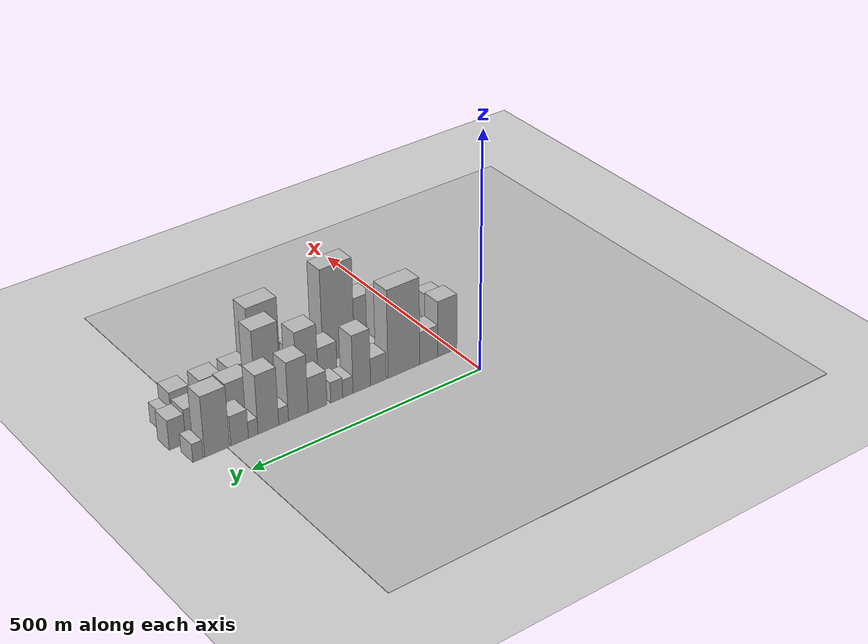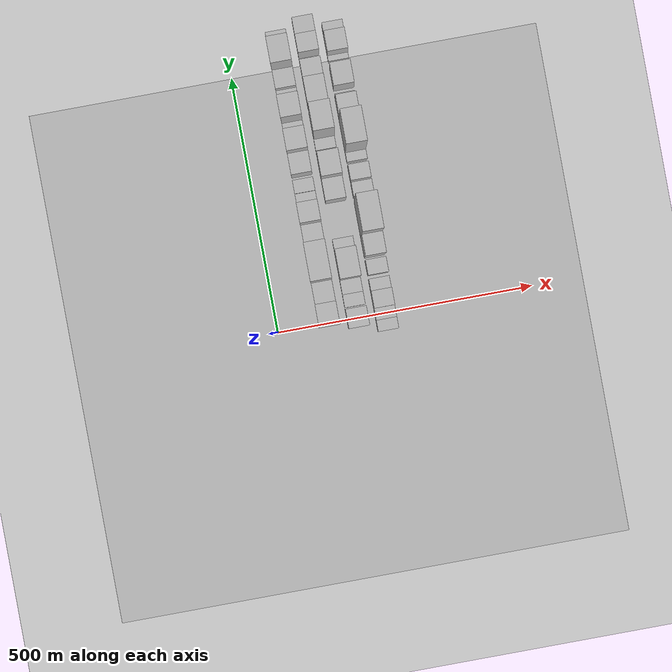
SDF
<sdf version="1.6">
 <world name="default">
  <include><name>ground_plane_1</name><uri>model://HANNAS_ground_plane</uri></include>
  <include>
   <name>ground_plane_2</name>
   <uri>model://HANNAS_ground_plane</uri>
   <pose>100 0 0  0 0 0</pose>
  </include>
  <model name="building_15">
   <static>1</static>
   <pose>100.0000 16.6368 0 0.000000 0.000000 0.000000</pose>
   <link name="link">
    <pose>0 0 61.50 0 0 0</pose>
    <collision name="collision"><geometry><box><size>40.0000 44.8695 123.0000</size></box></geometry></collision>
    <visual name="visual">
     <cast_shadows>0</cast_shadows>
     <geometry><box><size>40.0000 44.8695 123.0000</size></box></geometry>
     <material>
      <script>
       <uri>model://HANNAS_wall/materials/scripts</uri>
       <uri>model://HANNAS_wall/materials/textures</uri>
       <name>vrc/HANNAS_wall</name>
      </script>
     </material>
    </visual>
   </link>
  </model>
  <model name="building_16">
   <static>1</static>
   <pose>100.0000 59.8555 0 0.000000 0.000000 0.000000</pose>
   <link name="link">
    <pose>0 0 36.00 0 0 0</pose>
    <collision name="collision"><geometry><box><size>40.0000 41.5679 72.0000</size></box></geometry></collision>
    <visual name="visual">
     <cast_shadows>0</cast_shadows>
     <geometry><box><size>40.0000 41.5679 72.0000</size></box></geometry>
     <material>
      <script>
       <uri>model://HANNAS_wall/materials/scripts</uri>
       <uri>model://HANNAS_wall/materials/textures</uri>
       <name>vrc/HANNAS_wall</name>
      </script>
     </material>
    </visual>
   </link>
  </model>
  <model name="building_17">
   <static>1</static>
   <pose>100.0000 117.0593 0 0.000000 0.000000 0.000000</pose>
   <link name="link">
    <pose>0 0 96.00 0 0 0</pose>
    <collision name="collision"><geometry><box><size>40.0000 72.8397 192.0000</size></box></geometry></collision>
    <visual name="visual">
     <cast_shadows>0</cast_shadows>
     <geometry><box><size>40.0000 72.8397 192.0000</size></box></geometry>
     <material>
      <script>
       <uri>model://HANNAS_wall/materials/scripts</uri>
       <uri>model://HANNAS_wall/materials/textures</uri>
       <name>vrc/HANNAS_wall</name>
      </script>
     </material>
    </visual>
   </link>
  </model>
  <model name="building_18">
   <static>1</static>
   <pose>100.0000 175.2094 0 0.000000 0.000000 0.000000</pose>
   <link name="link">
    <pose>0 0 30.00 0 0 0</pose>
    <collision name="collision"><geometry><box><size>40.0000 35.4605 60.0000</size></box></geometry></collision>
    <visual name="visual">
     <cast_shadows>0</cast_shadows>
     <geometry><box><size>40.0000 35.4605 60.0000</size></box></geometry>
     <material>
      <script>
       <uri>model://HANNAS_wall/materials/scripts</uri>
       <uri>model://HANNAS_wall/materials/textures</uri>
       <name>vrc/HANNAS_wall</name>
      </script>
     </material>
    </visual>
   </link>
  </model>
  <model name="building_19">
   <static>1</static>
   <pose>100.0000 212.4825 0 0.000000 0.000000 0.000000</pose>
   <link name="link">
    <pose>0 0 63.00 0 0 0</pose>
    <collision name="collision"><geometry><box><size>40.0000 39.0856 126.0000</size></box></geometry></collision>
    <visual name="visual">
     <cast_shadows>0</cast_shadows>
     <geometry><box><size>40.0000 39.0856 126.0000</size></box></geometry>
     <material>
      <script>
       <uri>model://HANNAS_wall/materials/scripts</uri>
       <uri>model://HANNAS_wall/materials/textures</uri>
       <name>vrc/HANNAS_wall</name>
      </script>
     </material>
    </visual>
   </link>
  </model>
  <model name="building_20">
   <static>1</static>
   <pose>100.0000 243.4756 0 0.000000 0.000000 0.000000</pose>
   <link name="link">
    <pose>0 0 19.50 0 0 0</pose>
    <collision name="collision"><geometry><box><size>40.0000 22.9006 39.0000</size></box></geometry></collision>
    <visual name="visual">
     <cast_shadows>0</cast_shadows>
     <geometry><box><size>40.0000 22.9006 39.0000</size></box></geometry>
     <material>
      <script>
       <uri>model://HANNAS_wall/materials/scripts</uri>
       <uri>model://HANNAS_wall/materials/textures</uri>
       <name>vrc/HANNAS_wall</name>
      </script>
     </material>
    </visual>
   </link>
  </model>
  <model name="building_21">
   <static>1</static>
   <pose>100.0000 268.1488 0 0.000000 0.000000 0.000000</pose>
   <link name="link">
    <pose>0 0 22.50 0 0 0</pose>
    <collision name="collision"><geometry><box><size>40.0000 26.4457 45.0000</size></box></geometry></collision>
    <visual name="visual">
     <cast_shadows>0</cast_shadows>
     <geometry><box><size>40.0000 26.4457 45.0000</size></box></geometry>
     <material>
      <script>
       <uri>model://HANNAS_wall/materials/scripts</uri>
       <uri>model://HANNAS_wall/materials/textures</uri>
       <name>vrc/HANNAS_wall</name>
      </script>
     </material>
    </visual>
   </link>
  </model>
  <model name="building_22">
   <static>1</static>
   <pose>100.0000 309.7758 0 0.000000 0.000000 0.000000</pose>
   <link name="link">
    <pose>0 0 37.50 0 0 0</pose>
    <collision name="collision"><geometry><box><size>40.0000 40.8084 75.0000</size></box></geometry></collision>
    <visual name="visual">
     <cast_shadows>0</cast_shadows>
     <geometry><box><size>40.0000 40.8084 75.0000</size></box></geometry>
     <material>
      <script>
       <uri>model://HANNAS_wall/materials/scripts</uri>
       <uri>model://HANNAS_wall/materials/textures</uri>
       <name>vrc/HANNAS_wall</name>
      </script>
     </material>
    </visual>
   </link>
  </model>
  <model name="building_23">
   <static>1</static>
   <pose>100.0000 351.2639 0 0.000000 0.000000 0.000000</pose>
   <link name="link">
    <pose>0 0 63.00 0 0 0</pose>
    <collision name="collision"><geometry><box><size>40.0000 42.1678 126.0000</size></box></geometry></collision>
    <visual name="visual">
     <cast_shadows>0</cast_shadows>
     <geometry><box><size>40.0000 42.1678 126.0000</size></box></geometry>
     <material>
      <script>
       <uri>model://HANNAS_wall/materials/scripts</uri>
       <uri>model://HANNAS_wall/materials/textures</uri>
       <name>vrc/HANNAS_wall</name>
      </script>
     </material>
    </visual>
   </link>
  </model>
  <model name="building_24">
   <static>1</static>
   <pose>100.0000 382.6859 0 0.000000 0.000000 0.000000</pose>
   <link name="link">
    <pose>0 0 18.00 0 0 0</pose>
    <collision name="collision"><geometry><box><size>40.0000 20.6761 36.0000</size></box></geometry></collision>
    <visual name="visual">
     <cast_shadows>0</cast_shadows>
     <geometry><box><size>40.0000 20.6761 36.0000</size></box></geometry>
     <material>
      <script>
       <uri>model://HANNAS_wall/materials/scripts</uri>
       <uri>model://HANNAS_wall/materials/textures</uri>
       <name>vrc/HANNAS_wall</name>
      </script>
     </material>
    </visual>
   </link>
  </model>
  <model name="building_25">
   <static>1</static>
   <pose>100.0000 414.9001 0 0.000000 0.000000 0.000000</pose>
   <link name="link">
    <pose>0 0 63.00 0 0 0</pose>
    <collision name="collision"><geometry><box><size>40.0000 43.7524 126.0000</size></box></geometry></collision>
    <visual name="visual">
     <cast_shadows>0</cast_shadows>
     <geometry><box><size>40.0000 43.7524 126.0000</size></box></geometry>
     <material>
      <script>
       <uri>model://HANNAS_wall/materials/scripts</uri>
       <uri>model://HANNAS_wall/materials/textures</uri>
       <name>vrc/HANNAS_wall</name>
      </script>
     </material>
    </visual>
   </link>
  </model>
  <model name="building_26">
   <static>1</static>
   <pose>100.0000 446.7177 0 0.000000 0.000000 0.000000</pose>
   <link name="link">
    <pose>0 0 18.00 0 0 0</pose>
    <collision name="collision"><geometry><box><size>40.0000 19.8828 36.0000</size></box></geometry></collision>
    <visual name="visual">
     <cast_shadows>0</cast_shadows>
     <geometry><box><size>40.0000 19.8828 36.0000</size></box></geometry>
     <material>
      <script>
       <uri>model://HANNAS_wall/materials/scripts</uri>
       <uri>model://HANNAS_wall/materials/textures</uri>
       <name>vrc/HANNAS_wall</name>
      </script>
     </material>
    </visual>
   </link>
  </model>
  <model name="building_27">
   <static>1</static>
   <pose>100.0000 474.7866 0 0.000000 0.000000 0.000000</pose>
   <link name="link">
    <pose>0 0 31.50 0 0 0</pose>
    <collision name="collision"><geometry><box><size>40.0000 36.2548 63.0000</size></box></geometry></collision>
    <visual name="visual">
     <cast_shadows>0</cast_shadows>
     <geometry><box><size>40.0000 36.2548 63.0000</size></box></geometry>
     <material>
      <script>
       <uri>model://HANNAS_wall/materials/scripts</uri>
       <uri>model://HANNAS_wall/materials/textures</uri>
       <name>vrc/HANNAS_wall</name>
      </script>
     </material>
    </visual>
   </link>
  </model>
  <model name="building_28">
   <static>1</static>
   <pose>100.0000 521.2659 0 0.000000 0.000000 0.000000</pose>
   <link name="link">
    <pose>0 0 64.50 0 0 0</pose>
    <collision name="collision"><geometry><box><size>40.0000 50.7038 129.0000</size></box></geometry></collision>
    <visual name="visual">
     <cast_shadows>0</cast_shadows>
     <geometry><box><size>40.0000 50.7038 129.0000</size></box></geometry>
     <material>
      <script>
       <uri>model://HANNAS_wall/materials/scripts</uri>
       <uri>model://HANNAS_wall/materials/textures</uri>
       <name>vrc/HANNAS_wall</name>
      </script>
     </material>
    </visual>
   </link>
  </model>
  <model name="building_29">
   <static>1</static>
   <pose>100.0000 559.9831 0 0.000000 0.000000 0.000000</pose>
   <link name="link">
    <pose>0 0 19.50 0 0 0</pose>
    <collision name="collision"><geometry><box><size>40.0000 20.7306 39.0000</size></box></geometry></collision>
    <visual name="visual">
     <cast_shadows>0</cast_shadows>
     <geometry><box><size>40.0000 20.7306 39.0000</size></box></geometry>
     <material>
      <script>
       <uri>model://HANNAS_wall/materials/scripts</uri>
       <uri>model://HANNAS_wall/materials/textures</uri>
       <name>vrc/HANNAS_wall</name>
      </script>
     </material>
    </visual>
   </link>
  </model>
  <model name="building_48">
   <static>1</static>
   <pose>155.0000 1.4271 0 0.000000 0.000000 0.000000</pose>
   <link name="link">
    <pose>0 0 49.50 0 0 0</pose>
    <collision name="collision"><geometry><box><size>40.0000 37.5009 99.0000</size></box></geometry></collision>
    <visual name="visual">
     <cast_shadows>0</cast_shadows>
     <geometry><box><size>40.0000 37.5009 99.0000</size></box></geometry>
     <material>
      <script>
       <uri>model://HANNAS_wall/materials/scripts</uri>
       <uri>model://HANNAS_wall/materials/textures</uri>
       <name>vrc/HANNAS_wall</name>
      </script>
     </material>
    </visual>
   </link>
  </model>
  <model name="building_49">
   <static>1</static>
   <pose>155.0000 35.8026 0 0.000000 0.000000 0.000000</pose>
   <link name="link">
    <pose>0 0 24.00 0 0 0</pose>
    <collision name="collision"><geometry><box><size>40.0000 25.2502 48.0000</size></box></geometry></collision>
    <visual name="visual">
     <cast_shadows>0</cast_shadows>
     <geometry><box><size>40.0000 25.2502 48.0000</size></box></geometry>
     <material>
      <script>
       <uri>model://HANNAS_wall/materials/scripts</uri>
       <uri>model://HANNAS_wall/materials/textures</uri>
       <name>vrc/HANNAS_wall</name>
      </script>
     </material>
    </visual>
   </link>
  </model>
  <model name="building_50">
   <static>1</static>
   <pose>155.0000 62.4399 0 0.000000 0.000000 0.000000</pose>
   <link name="link">
    <pose>0 0 24.00 0 0 0</pose>
    <collision name="collision"><geometry><box><size>40.0000 28.0244 48.0000</size></box></geometry></collision>
    <visual name="visual">
     <cast_shadows>0</cast_shadows>
     <geometry><box><size>40.0000 28.0244 48.0000</size></box></geometry>
     <material>
      <script>
       <uri>model://HANNAS_wall/materials/scripts</uri>
       <uri>model://HANNAS_wall/materials/textures</uri>
       <name>vrc/HANNAS_wall</name>
      </script>
     </material>
    </visual>
   </link>
  </model>
  <model name="building_51">
   <static>1</static>
   <pose>155.0000 104.8814 0 0.000000 0.000000 0.000000</pose>
   <link name="link">
    <pose>0 0 72.00 0 0 0</pose>
    <collision name="collision"><geometry><box><size>40.0000 56.8585 144.0000</size></box></geometry></collision>
    <visual name="visual">
     <cast_shadows>0</cast_shadows>
     <geometry><box><size>40.0000 56.8585 144.0000</size></box></geometry>
     <material>
      <script>
       <uri>model://HANNAS_wall/materials/scripts</uri>
       <uri>model://HANNAS_wall/materials/textures</uri>
       <name>vrc/HANNAS_wall</name>
      </script>
     </material>
    </visual>
   </link>
  </model>
  <model name="building_52">
   <static>1</static>
   <pose>155.0000 144.8440 0 0.000000 0.000000 0.000000</pose>
   <link name="link">
    <pose>0 0 22.50 0 0 0</pose>
    <collision name="collision"><geometry><box><size>40.0000 23.0669 45.0000</size></box></geometry></collision>
    <visual name="visual">
     <cast_shadows>0</cast_shadows>
     <geometry><box><size>40.0000 23.0669 45.0000</size></box></geometry>
     <material>
      <script>
       <uri>model://HANNAS_wall/materials/scripts</uri>
       <uri>model://HANNAS_wall/materials/textures</uri>
       <name>vrc/HANNAS_wall</name>
      </script>
     </material>
    </visual>
   </link>
  </model>
  <model name="building_53">
   <static>1</static>
   <pose>155.0000 249.5226 0 0.000000 0.000000 0.000000</pose>
   <link name="link">
    <pose>0 0 42.00 0 0 0</pose>
    <collision name="collision"><geometry><box><size>40.0000 42.0968 84.0000</size></box></geometry></collision>
    <visual name="visual">
     <cast_shadows>0</cast_shadows>
     <geometry><box><size>40.0000 42.0968 84.0000</size></box></geometry>
     <material>
      <script>
       <uri>model://HANNAS_wall/materials/scripts</uri>
       <uri>model://HANNAS_wall/materials/textures</uri>
       <name>vrc/HANNAS_wall</name>
      </script>
     </material>
    </visual>
   </link>
  </model>
  <model name="building_54">
   <static>1</static>
   <pose>155.0000 294.1659 0 0.000000 0.000000 0.000000</pose>
   <link name="link">
    <pose>0 0 69.00 0 0 0</pose>
    <collision name="collision"><geometry><box><size>40.0000 47.1897 138.0000</size></box></geometry></collision>
    <visual name="visual">
     <cast_shadows>0</cast_shadows>
     <geometry><box><size>40.0000 47.1897 138.0000</size></box></geometry>
     <material>
      <script>
       <uri>model://HANNAS_wall/materials/scripts</uri>
       <uri>model://HANNAS_wall/materials/textures</uri>
       <name>vrc/HANNAS_wall</name>
      </script>
     </material>
    </visual>
   </link>
  </model>
  <model name="building_55">
   <static>1</static>
   <pose>155.0000 325.5950 0 0.000000 0.000000 0.000000</pose>
   <link name="link">
    <pose>0 0 9.00 0 0 0</pose>
    <collision name="collision"><geometry><box><size>40.0000 7.6686 18.0000</size></box></geometry></collision>
    <visual name="visual">
     <cast_shadows>0</cast_shadows>
     <geometry><box><size>40.0000 7.6686 18.0000</size></box></geometry>
     <material>
      <script>
       <uri>model://HANNAS_wall/materials/scripts</uri>
       <uri>model://HANNAS_wall/materials/textures</uri>
       <name>vrc/HANNAS_wall</name>
      </script>
     </material>
    </visual>
   </link>
  </model>
  <model name="building_56">
   <static>1</static>
   <pose>155.0000 340.5344 0 0.000000 0.000000 0.000000</pose>
   <link name="link">
    <pose>0 0 19.50 0 0 0</pose>
    <collision name="collision"><geometry><box><size>40.0000 22.2103 39.0000</size></box></geometry></collision>
    <visual name="visual">
     <cast_shadows>0</cast_shadows>
     <geometry><box><size>40.0000 22.2103 39.0000</size></box></geometry>
     <material>
      <script>
       <uri>model://HANNAS_wall/materials/scripts</uri>
       <uri>model://HANNAS_wall/materials/textures</uri>
       <name>vrc/HANNAS_wall</name>
      </script>
     </material>
    </visual>
   </link>
  </model>
  <model name="building_57">
   <static>1</static>
   <pose>155.0000 378.6704 0 0.000000 0.000000 0.000000</pose>
   <link name="link">
    <pose>0 0 88.50 0 0 0</pose>
    <collision name="collision"><geometry><box><size>40.0000 54.0616 177.0000</size></box></geometry></collision>
    <visual name="visual">
     <cast_shadows>0</cast_shadows>
     <geometry><box><size>40.0000 54.0616 177.0000</size></box></geometry>
     <material>
      <script>
       <uri>model://HANNAS_wall/materials/scripts</uri>
       <uri>model://HANNAS_wall/materials/textures</uri>
       <name>vrc/HANNAS_wall</name>
      </script>
     </material>
    </visual>
   </link>
  </model>
  <model name="building_58">
   <static>1</static>
   <pose>155.0000 439.4594 0 0.000000 0.000000 0.000000</pose>
   <link name="link">
    <pose>0 0 45.00 0 0 0</pose>
    <collision name="collision"><geometry><box><size>40.0000 53.5163 90.0000</size></box></geometry></collision>
    <visual name="visual">
     <cast_shadows>0</cast_shadows>
     <geometry><box><size>40.0000 53.5163 90.0000</size></box></geometry>
     <material>
      <script>
       <uri>model://HANNAS_wall/materials/scripts</uri>
       <uri>model://HANNAS_wall/materials/textures</uri>
       <name>vrc/HANNAS_wall</name>
      </script>
     </material>
    </visual>
   </link>
  </model>
  <model name="building_59">
   <static>1</static>
   <pose>155.0000 484.5531 0 0.000000 0.000000 0.000000</pose>
   <link name="link">
    <pose>0 0 34.50 0 0 0</pose>
    <collision name="collision"><geometry><box><size>40.0000 36.6712 69.0000</size></box></geometry></collision>
    <visual name="visual">
     <cast_shadows>0</cast_shadows>
     <geometry><box><size>40.0000 36.6712 69.0000</size></box></geometry>
     <material>
      <script>
       <uri>model://HANNAS_wall/materials/scripts</uri>
       <uri>model://HANNAS_wall/materials/textures</uri>
       <name>vrc/HANNAS_wall</name>
      </script>
     </material>
    </visual>
   </link>
  </model>
  <model name="building_60">
   <static>1</static>
   <pose>155.0000 507.0580 0 0.000000 0.000000 0.000000</pose>
   <link name="link">
    <pose>0 0 9.00 0 0 0</pose>
    <collision name="collision"><geometry><box><size>40.0000 8.3384 18.0000</size></box></geometry></collision>
    <visual name="visual">
     <cast_shadows>0</cast_shadows>
     <geometry><box><size>40.0000 8.3384 18.0000</size></box></geometry>
     <material>
      <script>
       <uri>model://HANNAS_wall/materials/scripts</uri>
       <uri>model://HANNAS_wall/materials/textures</uri>
       <name>vrc/HANNAS_wall</name>
      </script>
     </material>
    </visual>
   </link>
  </model>
  <model name="building_61">
   <static>1</static>
   <pose>155.0000 533.3430 0 0.000000 0.000000 0.000000</pose>
   <link name="link">
    <pose>0 0 36.00 0 0 0</pose>
    <collision name="collision"><geometry><box><size>40.0000 36.2317 72.0000</size></box></geometry></collision>
    <visual name="visual">
     <cast_shadows>0</cast_shadows>
     <geometry><box><size>40.0000 36.2317 72.0000</size></box></geometry>
     <material>
      <script>
       <uri>model://HANNAS_wall/materials/scripts</uri>
       <uri>model://HANNAS_wall/materials/textures</uri>
       <name>vrc/HANNAS_wall</name>
      </script>
     </material>
    </visual>
   </link>
  </model>
  <model name="building_62">
   <static>1</static>
   <pose>155.0000 568.1721 0 0.000000 0.000000 0.000000</pose>
   <link name="link">
    <pose>0 0 31.50 0 0 0</pose>
    <collision name="collision"><geometry><box><size>40.0000 33.4264 63.0000</size></box></geometry></collision>
    <visual name="visual">
     <cast_shadows>0</cast_shadows>
     <geometry><box><size>40.0000 33.4264 63.0000</size></box></geometry>
     <material>
      <script>
       <uri>model://HANNAS_wall/materials/scripts</uri>
       <uri>model://HANNAS_wall/materials/textures</uri>
       <name>vrc/HANNAS_wall</name>
      </script>
     </material>
    </visual>
   </link>
  </model>
  <model name="building_79">
   <static>1</static>
   <pose>210.0000 -22.2609 0 0.000000 0.000000 0.000000</pose>
   <link name="link">
    <pose>0 0 21.00 0 0 0</pose>
    <collision name="collision"><geometry><box><size>40.0000 22.2791 42.0000</size></box></geometry></collision>
    <visual name="visual">
     <cast_shadows>0</cast_shadows>
     <geometry><box><size>40.0000 22.2791 42.0000</size></box></geometry>
     <material>
      <script>
       <uri>model://HANNAS_wall/materials/scripts</uri>
       <uri>model://HANNAS_wall/materials/textures</uri>
       <name>vrc/HANNAS_wall</name>
      </script>
     </material>
    </visual>
   </link>
  </model>
  <model name="building_80">
   <static>1</static>
   <pose>210.0000 0.4637 0 0.000000 0.000000 0.000000</pose>
   <link name="link">
    <pose>0 0 22.50 0 0 0</pose>
    <collision name="collision"><geometry><box><size>40.0000 23.1699 45.0000</size></box></geometry></collision>
    <visual name="visual">
     <cast_shadows>0</cast_shadows>
     <geometry><box><size>40.0000 23.1699 45.0000</size></box></geometry>
     <material>
      <script>
       <uri>model://HANNAS_wall/materials/scripts</uri>
       <uri>model://HANNAS_wall/materials/textures</uri>
       <name>vrc/HANNAS_wall</name>
      </script>
     </material>
    </visual>
   </link>
  </model>
  <model name="building_81">
   <static>1</static>
   <pose>210.0000 28.9413 0 0.000000 0.000000 0.000000</pose>
   <link name="link">
    <pose>0 0 30.00 0 0 0</pose>
    <collision name="collision"><geometry><box><size>40.0000 33.7853 60.0000</size></box></geometry></collision>
    <visual name="visual">
     <cast_shadows>0</cast_shadows>
     <geometry><box><size>40.0000 33.7853 60.0000</size></box></geometry>
     <material>
      <script>
       <uri>model://HANNAS_wall/materials/scripts</uri>
       <uri>model://HANNAS_wall/materials/textures</uri>
       <name>vrc/HANNAS_wall</name>
      </script>
     </material>
    </visual>
   </link>
  </model>
  <model name="building_82">
   <static>1</static>
   <pose>210.0000 57.4894 0 0.000000 0.000000 0.000000</pose>
   <link name="link">
    <pose>0 0 21.00 0 0 0</pose>
    <collision name="collision"><geometry><box><size>40.0000 23.3110 42.0000</size></box></geometry></collision>
    <visual name="visual">
     <cast_shadows>0</cast_shadows>
     <geometry><box><size>40.0000 23.3110 42.0000</size></box></geometry>
     <material>
      <script>
       <uri>model://HANNAS_wall/materials/scripts</uri>
       <uri>model://HANNAS_wall/materials/textures</uri>
       <name>vrc/HANNAS_wall</name>
      </script>
     </material>
    </visual>
   </link>
  </model>
  <model name="building_83">
   <static>1</static>
   <pose>210.0000 91.0769 0 0.000000 0.000000 0.000000</pose>
   <link name="link">
    <pose>0 0 28.50 0 0 0</pose>
    <collision name="collision"><geometry><box><size>40.0000 29.8640 57.0000</size></box></geometry></collision>
    <visual name="visual">
     <cast_shadows>0</cast_shadows>
     <geometry><box><size>40.0000 29.8640 57.0000</size></box></geometry>
     <material>
      <script>
       <uri>model://HANNAS_wall/materials/scripts</uri>
       <uri>model://HANNAS_wall/materials/textures</uri>
       <name>vrc/HANNAS_wall</name>
      </script>
     </material>
    </visual>
   </link>
  </model>
  <model name="building_84">
   <static>1</static>
   <pose>210.0000 131.5543 0 0.000000 0.000000 0.000000</pose>
   <link name="link">
    <pose>0 0 58.50 0 0 0</pose>
    <collision name="collision"><geometry><box><size>40.0000 41.0907 117.0000</size></box></geometry></collision>
    <visual name="visual">
     <cast_shadows>0</cast_shadows>
     <geometry><box><size>40.0000 41.0907 117.0000</size></box></geometry>
     <material>
      <script>
       <uri>model://HANNAS_wall/materials/scripts</uri>
       <uri>model://HANNAS_wall/materials/textures</uri>
       <name>vrc/HANNAS_wall</name>
      </script>
     </material>
    </visual>
   </link>
  </model>
  <model name="building_85">
   <static>1</static>
   <pose>210.0000 187.5679 0 0.000000 0.000000 0.000000</pose>
   <link name="link">
    <pose>0 0 103.50 0 0 0</pose>
    <collision name="collision"><geometry><box><size>40.0000 70.9364 207.0000</size></box></geometry></collision>
    <visual name="visual">
     <cast_shadows>0</cast_shadows>
     <geometry><box><size>40.0000 70.9364 207.0000</size></box></geometry>
     <material>
      <script>
       <uri>model://HANNAS_wall/materials/scripts</uri>
       <uri>model://HANNAS_wall/materials/textures</uri>
       <name>vrc/HANNAS_wall</name>
      </script>
     </material>
    </visual>
   </link>
  </model>
  <model name="building_86">
   <static>1</static>
   <pose>210.0000 242.9680 0 0.000000 0.000000 0.000000</pose>
   <link name="link">
    <pose>0 0 27.00 0 0 0</pose>
    <collision name="collision"><geometry><box><size>40.0000 27.8639 54.0000</size></box></geometry></collision>
    <visual name="visual">
     <cast_shadows>0</cast_shadows>
     <geometry><box><size>40.0000 27.8639 54.0000</size></box></geometry>
     <material>
      <script>
       <uri>model://HANNAS_wall/materials/scripts</uri>
       <uri>model://HANNAS_wall/materials/textures</uri>
       <name>vrc/HANNAS_wall</name>
      </script>
     </material>
    </visual>
   </link>
  </model>
  <model name="building_87">
   <static>1</static>
   <pose>210.0000 275.3803 0 0.000000 0.000000 0.000000</pose>
   <link name="link">
    <pose>0 0 28.50 0 0 0</pose>
    <collision name="collision"><geometry><box><size>40.0000 30.9608 57.0000</size></box></geometry></collision>
    <visual name="visual">
     <cast_shadows>0</cast_shadows>
     <geometry><box><size>40.0000 30.9608 57.0000</size></box></geometry>
     <material>
      <script>
       <uri>model://HANNAS_wall/materials/scripts</uri>
       <uri>model://HANNAS_wall/materials/textures</uri>
       <name>vrc/HANNAS_wall</name>
      </script>
     </material>
    </visual>
   </link>
  </model>
  <model name="building_88">
   <static>1</static>
   <pose>210.0000 307.0343 0 0.000000 0.000000 0.000000</pose>
   <link name="link">
    <pose>0 0 16.50 0 0 0</pose>
    <collision name="collision"><geometry><box><size>40.0000 18.3470 33.0000</size></box></geometry></collision>
    <visual name="visual">
     <cast_shadows>0</cast_shadows>
     <geometry><box><size>40.0000 18.3470 33.0000</size></box></geometry>
     <material>
      <script>
       <uri>model://HANNAS_wall/materials/scripts</uri>
       <uri>model://HANNAS_wall/materials/textures</uri>
       <name>vrc/HANNAS_wall</name>
      </script>
     </material>
    </visual>
   </link>
  </model>
  <model name="building_89">
   <static>1</static>
   <pose>210.0000 348.9651 0 0.000000 0.000000 0.000000</pose>
   <link name="link">
    <pose>0 0 93.00 0 0 0</pose>
    <collision name="collision"><geometry><box><size>40.0000 65.5148 186.0000</size></box></geometry></collision>
    <visual name="visual">
     <cast_shadows>0</cast_shadows>
     <geometry><box><size>40.0000 65.5148 186.0000</size></box></geometry>
     <material>
      <script>
       <uri>model://HANNAS_wall/materials/scripts</uri>
       <uri>model://HANNAS_wall/materials/textures</uri>
       <name>vrc/HANNAS_wall</name>
      </script>
     </material>
    </visual>
   </link>
  </model>
  <model name="building_90">
   <static>1</static>
   <pose>210.0000 402.8697 0 0.000000 0.000000 0.000000</pose>
   <link name="link">
    <pose>0 0 37.50 0 0 0</pose>
    <collision name="collision"><geometry><box><size>40.0000 42.2943 75.0000</size></box></geometry></collision>
    <visual name="visual">
     <cast_shadows>0</cast_shadows>
     <geometry><box><size>40.0000 42.2943 75.0000</size></box></geometry>
     <material>
      <script>
       <uri>model://HANNAS_wall/materials/scripts</uri>
       <uri>model://HANNAS_wall/materials/textures</uri>
       <name>vrc/HANNAS_wall</name>
      </script>
     </material>
    </visual>
   </link>
  </model>
  <model name="building_91">
   <static>1</static>
   <pose>210.0000 428.4080 0 0.000000 0.000000 0.000000</pose>
   <link name="link">
    <pose>0 0 10.50 0 0 0</pose>
    <collision name="collision"><geometry><box><size>40.0000 8.7823 21.0000</size></box></geometry></collision>
    <visual name="visual">
     <cast_shadows>0</cast_shadows>
     <geometry><box><size>40.0000 8.7823 21.0000</size></box></geometry>
     <material>
      <script>
       <uri>model://HANNAS_wall/materials/scripts</uri>
       <uri>model://HANNAS_wall/materials/textures</uri>
       <name>vrc/HANNAS_wall</name>
      </script>
     </material>
    </visual>
   </link>
  </model>
  <model name="building_92">
   <static>1</static>
   <pose>210.0000 463.2663 0 0.000000 0.000000 0.000000</pose>
   <link name="link">
    <pose>0 0 37.50 0 0 0</pose>
    <collision name="collision"><geometry><box><size>40.0000 44.9342 75.0000</size></box></geometry></collision>
    <visual name="visual">
     <cast_shadows>0</cast_shadows>
     <geometry><box><size>40.0000 44.9342 75.0000</size></box></geometry>
     <material>
      <script>
       <uri>model://HANNAS_wall/materials/scripts</uri>
       <uri>model://HANNAS_wall/materials/textures</uri>
       <name>vrc/HANNAS_wall</name>
      </script>
     </material>
    </visual>
   </link>
  </model>
  <model name="building_93">
   <static>1</static>
   <pose>210.0000 501.3804 0 0.000000 0.000000 0.000000</pose>
   <link name="link">
    <pose>0 0 12.00 0 0 0</pose>
    <collision name="collision"><geometry><box><size>40.0000 11.2941 24.0000</size></box></geometry></collision>
    <visual name="visual">
     <cast_shadows>0</cast_shadows>
     <geometry><box><size>40.0000 11.2941 24.0000</size></box></geometry>
     <material>
      <script>
       <uri>model://HANNAS_wall/materials/scripts</uri>
       <uri>model://HANNAS_wall/materials/textures</uri>
       <name>vrc/HANNAS_wall</name>
      </script>
     </material>
    </visual>
   </link>
  </model>
  <model name="building_94">
   <static>1</static>
   <pose>210.0000 527.0848 0 0.000000 0.000000 0.000000</pose>
   <link name="link">
    <pose>0 0 37.50 0 0 0</pose>
    <collision name="collision"><geometry><box><size>40.0000 40.1147 75.0000</size></box></geometry></collision>
    <visual name="visual">
     <cast_shadows>0</cast_shadows>
     <geometry><box><size>40.0000 40.1147 75.0000</size></box></geometry>
     <material>
      <script>
       <uri>model://HANNAS_wall/materials/scripts</uri>
       <uri>model://HANNAS_wall/materials/textures</uri>
       <name>vrc/HANNAS_wall</name>
      </script>
     </material>
    </visual>
   </link>
  </model>
  <model name="building_95">
   <static>1</static>
   <pose>210.0000 557.8664 0 0.000000 0.000000 0.000000</pose>
   <link name="link">
    <pose>0 0 21.00 0 0 0</pose>
    <collision name="collision"><geometry><box><size>40.0000 21.4484 42.0000</size></box></geometry></collision>
    <visual name="visual">
     <cast_shadows>0</cast_shadows>
     <geometry><box><size>40.0000 21.4484 42.0000</size></box></geometry>
     <material>
      <script>
       <uri>model://HANNAS_wall/materials/scripts</uri>
       <uri>model://HANNAS_wall/materials/textures</uri>
       <name>vrc/HANNAS_wall</name>
      </script>
     </material>
    </visual>
   </link>
  </model>
 </world>
</sdf>
